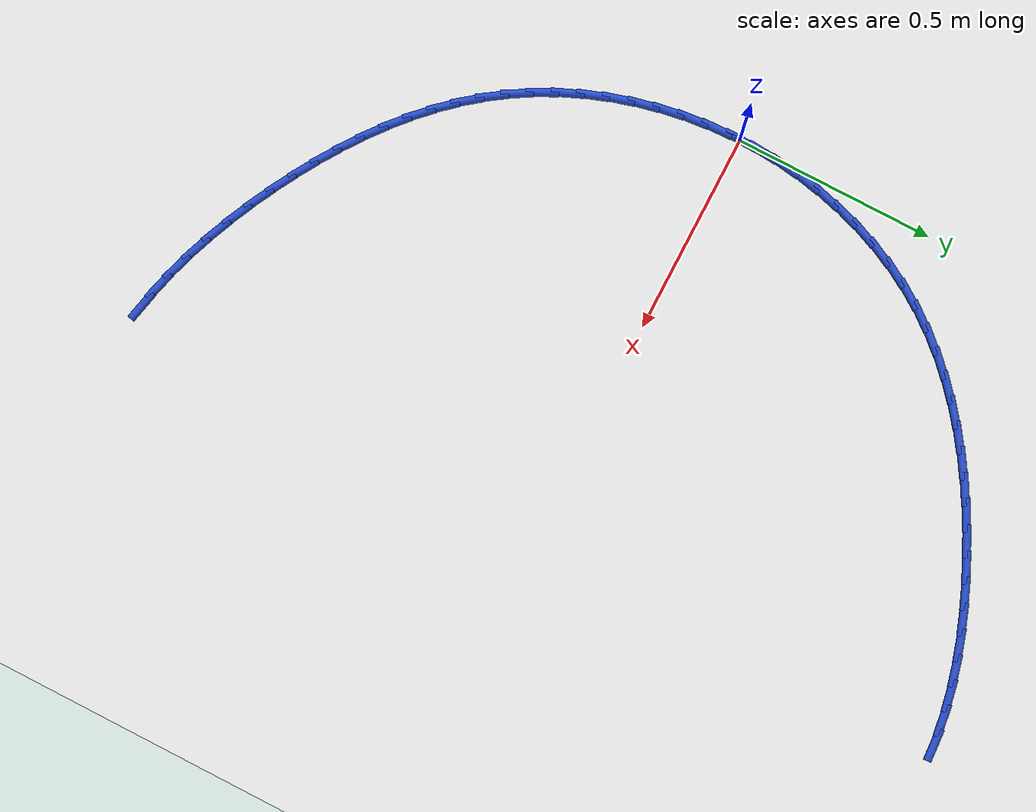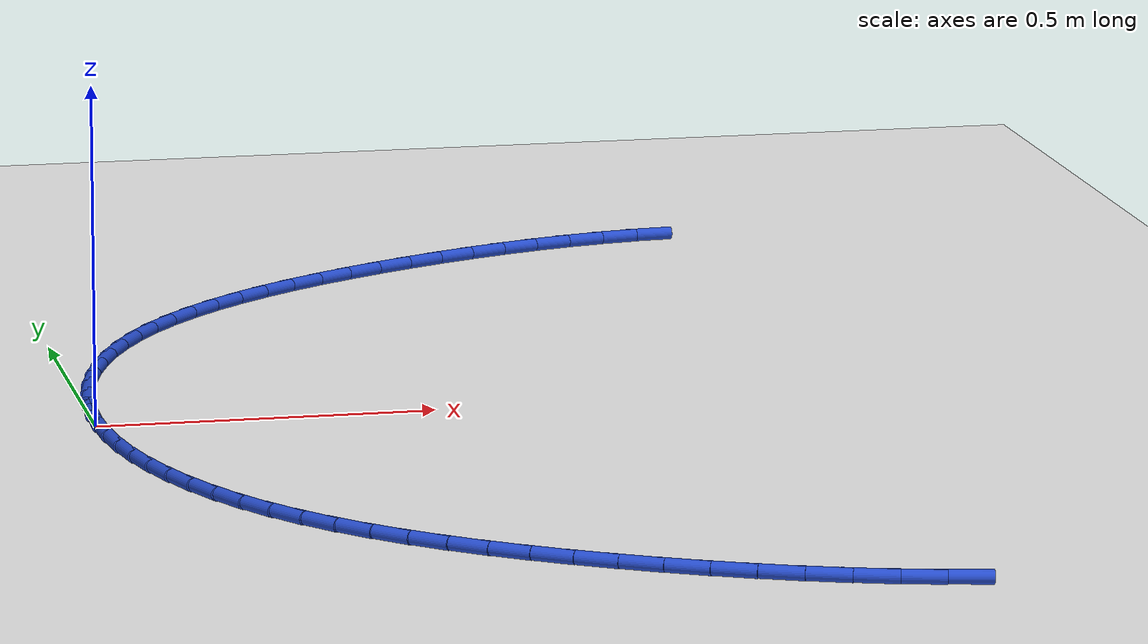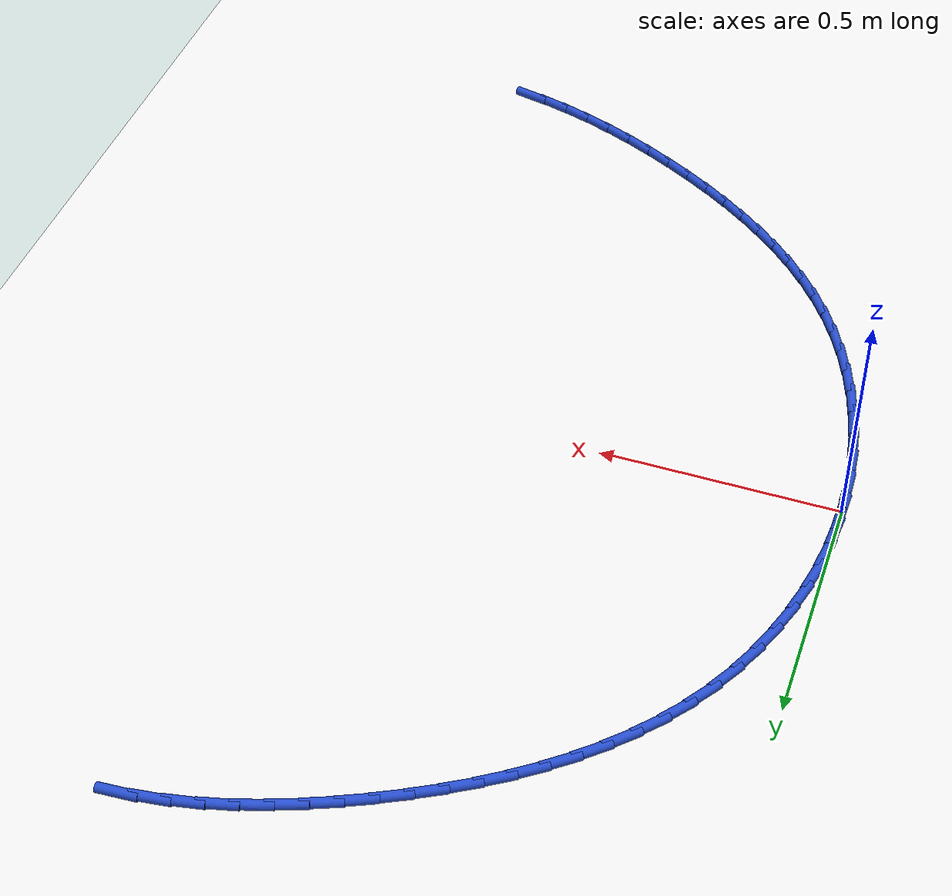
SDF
<sdf version="1.6">
 <world name="default">
  <model name="ground_plane">
   <static>1</static>
   <link name="link">
    <collision name="collision">
     <geometry><plane><normal>0 0 1</normal><size>100 100</size></plane></geometry>
     <surface><friction><ode><mu>100</mu><mu2>50</mu2></ode></friction></surface>
    </collision>
    <visual name="visual">
     <cast_shadows>0</cast_shadows>
     <geometry><plane><normal>0 0 1</normal><size>100 100</size></plane></geometry>
     <material>
      <script><uri>file://media/materials/scripts/gazebo.material</uri><name>Gazebo/WhiteGlow</name></script>
     </material>
    </visual>
   </link>
  </model>
  <model name="line">
   <link name="link_0">
    <pose>-1.0408340855860843e-17 -2.0816681711721685e-16 0.01 0 1.57 1.5445367931981977</pose>
    <collision name="collision">
     <geometry><cylinder><radius>0.01</radius><length>0.08</length></cylinder></geometry>
    </collision>
    <visual name="visual">
     <material>
      <script><name>Gazebo/Blue</name><uri>file://media/materials/scripts/gazebo.material</uri></script>
     </material>
     <geometry><cylinder><radius>0.01</radius><length>0.08</length></cylinder></geometry>
    </visual>
   </link>
   <link name="link_1">
    <pose>0.0016090241988518136 0.06125982149242314 0.01 0 1.57 1.4847815136559068</pose>
    <collision name="collision">
     <geometry><cylinder><radius>0.01</radius><length>0.08</length></cylinder></geometry>
    </collision>
    <visual name="visual">
     <material>
      <script><name>Gazebo/Blue</name><uri>file://media/materials/scripts/gazebo.material</uri></script>
     </material>
     <geometry><cylinder><radius>0.01</radius><length>0.08</length></cylinder></geometry>
    </visual>
   </link>
   <link name="link_2">
    <pose>0.006869378761184274 0.12226530382957211 0.01 0 1.57 1.424776633245018</pose>
    <collision name="collision">
     <geometry><cylinder><radius>0.01</radius><length>0.08</length></cylinder></geometry>
    </collision>
    <visual name="visual">
     <material>
      <script><name>Gazebo/Blue</name><uri>file://media/materials/scripts/gazebo.material</uri></script>
     </material>
     <geometry><cylinder><radius>0.01</radius><length>0.08</length></cylinder></geometry>
    </visual>
   </link>
   <link name="link_3">
    <pose>0.0157631495869021 0.18273982149628865 0.01 0 1.57 1.3641377413178506</pose>
    <collision name="collision">
     <geometry><cylinder><radius>0.01</radius><length>0.08</length></cylinder></geometry>
    </collision>
    <visual name="visual">
     <material>
      <script><name>Gazebo/Blue</name><uri>file://media/materials/scripts/gazebo.material</uri></script>
     </material>
     <geometry><cylinder><radius>0.01</radius><length>0.08</length></cylinder></geometry>
    </visual>
   </link>
   <link name="link_4">
    <pose>0.028272422575910075 0.24240674897741482 0.01 0 1.57 1.3024838307703317</pose>
    <collision name="collision">
     <geometry><cylinder><radius>0.01</radius><length>0.08</length></cylinder></geometry>
    </collision>
    <visual name="visual">
     <material>
      <script><name>Gazebo/Blue</name><uri>file://media/materials/scripts/gazebo.material</uri></script>
     </material>
     <geometry><cylinder><radius>0.01</radius><length>0.08</length></cylinder></geometry>
    </visual>
   </link>
   <link name="link_5">
    <pose>0.04437928362811293 0.3009894607577926 0.01 0 1.57 1.2394421279415735</pose>
    <collision name="collision">
     <geometry><cylinder><radius>0.01</radius><length>0.08</length></cylinder></geometry>
    </collision>
    <visual name="visual">
     <material>
      <script><name>Gazebo/Blue</name><uri>file://media/materials/scripts/gazebo.material</uri></script>
     </material>
     <geometry><cylinder><radius>0.01</radius><length>0.08</length></cylinder></geometry>
    </visual>
   </link>
   <link name="link_6">
    <pose>0.0640658186434154 0.3582113313222638 0.01 0 1.57 1.1746550469970418</pose>
    <collision name="collision">
     <geometry><cylinder><radius>0.01</radius><length>0.08</length></cylinder></geometry>
    </collision>
    <visual name="visual">
     <material>
      <script><name>Gazebo/Blue</name><uri>file://media/materials/scripts/gazebo.material</uri></script>
     </material>
     <geometry><cylinder><radius>0.01</radius><length>0.08</length></cylinder></geometry>
    </visual>
   </link>
   <link name="link_7">
    <pose>0.08731411352172225 0.41379573515567053 0.01 0 1.57 1.1077900994409624</pose>
    <collision name="collision">
     <geometry><cylinder><radius>0.01</radius><length>0.08</length></cylinder></geometry>
    </collision>
    <visual name="visual">
     <material>
      <script><name>Gazebo/Blue</name><uri>file://media/materials/scripts/gazebo.material</uri></script>
     </material>
     <geometry><cylinder><radius>0.01</radius><length>0.08</length></cylinder></geometry>
    </visual>
   </link>
   <link name="link_8">
    <pose>0.11410625416293826 0.46746604674285486 0.01 0 1.57 1.0385534839172859</pose>
    <collision name="collision">
     <geometry><cylinder><radius>0.01</radius><length>0.08</length></cylinder></geometry>
    </collision>
    <visual name="visual">
     <material>
      <script><name>Gazebo/Blue</name><uri>file://media/materials/scripts/gazebo.material</uri></script>
     </material>
     <geometry><cylinder><radius>0.01</radius><length>0.08</length></cylinder></geometry>
    </visual>
   </link>
   <link name="link_9">
    <pose>0.14442432646696818 0.5189456405686586 0.01 0 1.57 0.9669129062504712</pose>
    <collision name="collision">
     <geometry><cylinder><radius>0.01</radius><length>0.08</length></cylinder></geometry>
    </collision>
    <visual name="visual">
     <material>
      <script><name>Gazebo/Blue</name><uri>file://media/materials/scripts/gazebo.material</uri></script>
     </material>
     <geometry><cylinder><radius>0.01</radius><length>0.08</length></cylinder></geometry>
    </visual>
   </link>
   <link name="link_10">
    <pose>0.17824274986509572 0.5679682885847851 0.01 0 1.57 0.8963630843494043</pose>
    <collision name="collision">
     <geometry><cylinder><radius>0.01</radius><length>0.08</length></cylinder></geometry>
    </collision>
    <visual name="visual">
     <material>
      <script><name>Gazebo/Blue</name><uri>file://media/materials/scripts/gazebo.material</uri></script>
     </material>
     <geometry><cylinder><radius>0.01</radius><length>0.08</length></cylinder></geometry>
    </visual>
   </link>
   <link name="link_11">
    <pose>0.21540305828365772 0.6144479855681233 0.01 0 1.57 0.830148145424761</pose>
    <collision name="collision">
     <geometry><cylinder><radius>0.01</radius><length>0.08</length></cylinder></geometry>
    </collision>
    <visual name="visual">
     <material>
      <script><name>Gazebo/Blue</name><uri>file://media/materials/scripts/gazebo.material</uri></script>
     </material>
     <geometry><cylinder><radius>0.01</radius><length>0.08</length></cylinder></geometry>
    </visual>
   </link>
   <link name="link_12">
    <pose>0.25563431824626115 0.6584512575522193 0.01 0 1.57 0.7685072253940374</pose>
    <collision name="collision">
     <geometry><cylinder><radius>0.01</radius><length>0.08</length></cylinder></geometry>
    </collision>
    <visual name="visual">
     <material>
      <script><name>Gazebo/Blue</name><uri>file://media/materials/scripts/gazebo.material</uri></script>
     </material>
     <geometry><cylinder><radius>0.01</radius><length>0.08</length></cylinder></geometry>
    </visual>
   </link>
   <link name="link_13">
    <pose>0.2986620490877461 0.7000494413615425 0.01 0 1.57 0.711426776830469</pose>
    <collision name="collision">
     <geometry><cylinder><radius>0.01</radius><length>0.08</length></cylinder></geometry>
    </collision>
    <visual name="visual">
     <material>
      <script><name>Gazebo/Blue</name><uri>file://media/materials/scripts/gazebo.material</uri></script>
     </material>
     <geometry><cylinder><radius>0.01</radius><length>0.08</length></cylinder></geometry>
    </visual>
   </link>
   <link name="link_14">
    <pose>0.3442117701429526 0.7393138738205622 0.01 0 1.57 0.65877608435679</pose>
    <collision name="collision">
     <geometry><cylinder><radius>0.01</radius><length>0.08</length></cylinder></geometry>
    </collision>
    <visual name="visual">
     <material>
      <script><name>Gazebo/Blue</name><uri>file://media/materials/scripts/gazebo.material</uri></script>
     </material>
     <geometry><cylinder><radius>0.01</radius><length>0.08</length></cylinder></geometry>
    </visual>
   </link>
   <link name="link_15">
    <pose>0.3920090007467211 0.7763158917537484 0.01 0 1.57 0.6103450337031786</pose>
    <collision name="collision">
     <geometry><cylinder><radius>0.01</radius><length>0.08</length></cylinder></geometry>
    </collision>
    <visual name="visual">
     <material>
      <script><name>Gazebo/Blue</name><uri>file://media/materials/scripts/gazebo.material</uri></script>
     </material>
     <geometry><cylinder><radius>0.01</radius><length>0.08</length></cylinder></geometry>
    </visual>
   </link>
   <link name="link_16">
    <pose>0.44177926023389147 0.8111268319855706 0.01 0 1.57 0.5658758025588687</pose>
    <collision name="collision">
     <geometry><cylinder><radius>0.01</radius><length>0.08</length></cylinder></geometry>
    </collision>
    <visual name="visual">
     <material>
      <script><name>Gazebo/Blue</name><uri>file://media/materials/scripts/gazebo.material</uri></script>
     </material>
     <geometry><cylinder><radius>0.01</radius><length>0.08</length></cylinder></geometry>
    </visual>
   </link>
   <link name="link_17">
    <pose>0.49324806793930387 0.8438180313404977 0.01 0 1.57 0.5250874799756405</pose>
    <collision name="collision">
     <geometry><cylinder><radius>0.01</radius><length>0.08</length></cylinder></geometry>
    </collision>
    <visual name="visual">
     <material>
      <script><name>Gazebo/Blue</name><uri>file://media/materials/scripts/gazebo.material</uri></script>
     </material>
     <geometry><cylinder><radius>0.01</radius><length>0.08</length></cylinder></geometry>
    </visual>
   </link>
   <link name="link_18">
    <pose>0.5461409431977984 0.8744608266429996 0.01 0 1.57 0.48769400286201586</pose>
    <collision name="collision">
     <geometry><cylinder><radius>0.01</radius><length>0.08</length></cylinder></geometry>
    </collision>
    <visual name="visual">
     <material>
      <script><name>Gazebo/Blue</name><uri>file://media/materials/scripts/gazebo.material</uri></script>
     </material>
     <geometry><cylinder><radius>0.01</radius><length>0.08</length></cylinder></geometry>
    </visual>
   </link>
   <link name="link_19">
    <pose>0.6001834053442153 0.9031265547175462 0.01 0 1.57 0.45341487942533043</pose>
    <collision name="collision">
     <geometry><cylinder><radius>0.01</radius><length>0.08</length></cylinder></geometry>
    </collision>
    <visual name="visual">
     <material>
      <script><name>Gazebo/Blue</name><uri>file://media/materials/scripts/gazebo.material</uri></script>
     </material>
     <geometry><cylinder><radius>0.01</radius><length>0.08</length></cylinder></geometry>
    </visual>
   </link>
   <link name="link_20">
    <pose>0.6551010359410494 0.9298864748464187 0.01 0 1.57 0.42041061689052833</pose>
    <collision name="collision">
     <geometry><cylinder><radius>0.01</radius><length>0.08</length></cylinder></geometry>
    </collision>
    <visual name="visual">
     <material>
      <script><name>Gazebo/Blue</name><uri>file://media/materials/scripts/gazebo.material</uri></script>
     </material>
     <geometry><cylinder><radius>0.01</radius><length>0.08</length></cylinder></geometry>
    </visual>
   </link>
   <link name="link_21">
    <pose>0.7106814533041962 0.9547345420073294 0.01 0 1.57 0.38393802546378325</pose>
    <collision name="collision">
     <geometry><cylinder><radius>0.01</radius><length>0.08</length></cylinder></geometry>
    </collision>
    <visual name="visual">
     <material>
      <script><name>Gazebo/Blue</name><uri>file://media/materials/scripts/gazebo.material</uri></script>
     </material>
     <geometry><cylinder><radius>0.01</radius><length>0.08</length></cylinder></geometry>
    </visual>
   </link>
   <link name="link_22">
    <pose>0.7668907447770624 0.9774423200420483 0.01 0 1.57 0.34303454594396604</pose>
    <collision name="collision">
     <geometry><cylinder><radius>0.01</radius><length>0.08</length></cylinder></geometry>
    </collision>
    <visual name="visual">
     <material>
      <script><name>Gazebo/Blue</name><uri>file://media/materials/scripts/gazebo.material</uri></script>
     </material>
     <geometry><cylinder><radius>0.01</radius><length>0.08</length></cylinder></geometry>
    </visual>
   </link>
   <link name="link_23">
    <pose>0.8237268953910865 0.9977416249258709 0.01 0 1.57 0.2975820216933092</pose>
    <collision name="collision">
     <geometry><cylinder><radius>0.01</radius><length>0.08</length></cylinder></geometry>
    </collision>
    <visual name="visual">
     <material>
      <script><name>Gazebo/Blue</name><uri>file://media/materials/scripts/gazebo.material</uri></script>
     </material>
     <geometry><cylinder><radius>0.01</radius><length>0.08</length></cylinder></geometry>
    </visual>
   </link>
   <link name="link_24">
    <pose>0.8811878901777067 1.015364272634092 0.01 0 1.57 0.24751861216411206</pose>
    <collision name="collision">
     <geometry><cylinder><radius>0.01</radius><length>0.08</length></cylinder></geometry>
    </collision>
    <visual name="visual">
     <material>
      <script><name>Gazebo/Blue</name><uri>file://media/materials/scripts/gazebo.material</uri></script>
     </material>
     <geometry><cylinder><radius>0.01</radius><length>0.08</length></cylinder></geometry>
    </visual>
   </link>
   <link name="link_25">
    <pose>0.9392717141683616 1.0300420791420064 0.01 0 1.57 0.19286842270415547</pose>
    <collision name="collision">
     <geometry><cylinder><radius>0.01</radius><length>0.08</length></cylinder></geometry>
    </collision>
    <visual name="visual">
     <material>
      <script><name>Gazebo/Blue</name><uri>file://media/materials/scripts/gazebo.material</uri></script>
     </material>
     <geometry><cylinder><radius>0.01</radius><length>0.08</length></cylinder></geometry>
    </visual>
   </link>
   <link name="link_26">
    <pose>0.9979763523944892 1.0415068604249096 0.01 0 1.57 0.1337733054320361</pose>
    <collision name="collision">
     <geometry><cylinder><radius>0.01</radius><length>0.08</length></cylinder></geometry>
    </collision>
    <visual name="visual">
     <material>
      <script><name>Gazebo/Blue</name><uri>file://media/materials/scripts/gazebo.material</uri></script>
     </material>
     <geometry><cylinder><radius>0.01</radius><length>0.08</length></cylinder></geometry>
    </visual>
   </link>
   <link name="link_27">
    <pose>1.0572997898875287 1.0494904324580971 0.01 0 1.57 0.07052287720650836</pose>
    <collision name="collision">
     <geometry><cylinder><radius>0.01</radius><length>0.08</length></cylinder></geometry>
    </collision>
    <visual name="visual">
     <material>
      <script><name>Gazebo/Blue</name><uri>file://media/materials/scripts/gazebo.material</uri></script>
     </material>
     <geometry><cylinder><radius>0.01</radius><length>0.08</length></cylinder></geometry>
    </visual>
   </link>
   <link name="link_84">
    <pose>0.9991134741351964 -1.067758711245783 0.01 0 1.57 -0.2189612885040175</pose>
    <collision name="collision">
     <geometry><cylinder><radius>0.01</radius><length>0.08</length></cylinder></geometry>
    </collision>
    <visual name="visual">
     <material>
      <script><name>Gazebo/Blue</name><uri>file://media/materials/scripts/gazebo.material</uri></script>
     </material>
     <geometry><cylinder><radius>0.01</radius><length>0.08</length></cylinder></geometry>
    </visual>
   </link>
   <link name="link_85">
    <pose>0.9394061504980881 -1.0544720989425023 0.01 0 1.57 -0.2735581666819616</pose>
    <collision name="collision">
     <geometry><cylinder><radius>0.01</radius><length>0.08</length></cylinder></geometry>
    </collision>
    <visual name="visual">
     <material>
      <script><name>Gazebo/Blue</name><uri>file://media/materials/scripts/gazebo.material</uri></script>
     </material>
     <geometry><cylinder><radius>0.01</radius><length>0.08</length></cylinder></geometry>
    </visual>
   </link>
   <link name="link_86">
    <pose>0.8798356463323103 -1.0377570543427617 0.01 0 1.57 -0.3232321366733121</pose>
    <collision name="collision">
     <geometry><cylinder><radius>0.01</radius><length>0.08</length></cylinder></geometry>
    </collision>
    <visual name="visual">
     <material>
      <script><name>Gazebo/Blue</name><uri>file://media/materials/scripts/gazebo.material</uri></script>
     </material>
     <geometry><cylinder><radius>0.01</radius><length>0.08</length></cylinder></geometry>
    </visual>
   </link>
   <link name="link_87">
    <pose>0.8206179513332906 -1.017920290118248 0.01 0 1.57 -0.36857677035676606</pose>
    <collision name="collision">
     <geometry><cylinder><radius>0.01</radius><length>0.08</length></cylinder></geometry>
    </collision>
    <visual name="visual">
     <material>
      <script><name>Gazebo/Blue</name><uri>file://media/materials/scripts/gazebo.material</uri></script>
     </material>
     <geometry><cylinder><radius>0.01</radius><length>0.08</length></cylinder></geometry>
    </visual>
   </link>
   <link name="link_88">
    <pose>0.7619690551964605 -0.9952685189406499 0.01 0 1.57 -0.410152888977622</pose>
    <collision name="collision">
     <geometry><cylinder><radius>0.01</radius><length>0.08</length></cylinder></geometry>
    </collision>
    <visual name="visual">
     <material>
      <script><name>Gazebo/Blue</name><uri>file://media/materials/scripts/gazebo.material</uri></script>
     </material>
     <geometry><cylinder><radius>0.01</radius><length>0.08</length></cylinder></geometry>
    </visual>
   </link>
   <link name="link_89">
    <pose>0.704104947617248 -0.9701084534816545 0.01 0 1.57 -0.44848071702313574</pose>
    <collision name="collision">
     <geometry><cylinder><radius>0.01</radius><length>0.08</length></cylinder></geometry>
    </collision>
    <visual name="visual">
     <material>
      <script><name>Gazebo/Blue</name><uri>file://media/materials/scripts/gazebo.material</uri></script>
     </material>
     <geometry><cylinder><radius>0.01</radius><length>0.08</length></cylinder></geometry>
    </visual>
   </link>
   <link name="link_90">
    <pose>0.6472416182910838 -0.94274680641295 0.01 0 1.57 -0.484039502776817</pose>
    <collision name="collision">
     <geometry><cylinder><radius>0.01</radius><length>0.08</length></cylinder></geometry>
    </collision>
    <visual name="visual">
     <material>
      <script><name>Gazebo/Blue</name><uri>file://media/materials/scripts/gazebo.material</uri></script>
     </material>
     <geometry><cylinder><radius>0.01</radius><length>0.08</length></cylinder></geometry>
    </visual>
   </link>
   <link name="link_91">
    <pose>0.5915950569133969 -0.9134902904062241 0.01 0 1.57 -0.5178733590392871</pose>
    <collision name="collision">
     <geometry><cylinder><radius>0.01</radius><length>0.08</length></cylinder></geometry>
    </collision>
    <visual name="visual">
     <material>
      <script><name>Gazebo/Blue</name><uri>file://media/materials/scripts/gazebo.material</uri></script>
     </material>
     <geometry><cylinder><radius>0.01</radius><length>0.08</length></cylinder></geometry>
    </visual>
   </link>
   <link name="link_92">
    <pose>0.5373779553661993 -0.8826005604210687 0.01 0 1.57 -0.5538706537516347</pose>
    <collision name="collision">
     <geometry><cylinder><radius>0.01</radius><length>0.08</length></cylinder></geometry>
    </collision>
    <visual name="visual">
     <material>
      <script><name>Gazebo/Blue</name><uri>file://media/materials/scripts/gazebo.material</uri></script>
     </material>
     <geometry><cylinder><radius>0.01</radius><length>0.08</length></cylinder></geometry>
    </visual>
   </link>
   <link name="link_93">
    <pose>0.4847835835932989 -0.8500739113166575 0.01 0 1.57 -0.5935319165760438</pose>
    <collision name="collision">
     <geometry><cylinder><radius>0.01</radius><length>0.08</length></cylinder></geometry>
    </collision>
    <visual name="visual">
     <material>
      <script><name>Gazebo/Blue</name><uri>file://media/materials/scripts/gazebo.material</uri></script>
     </material>
     <geometry><cylinder><radius>0.01</radius><length>0.08</length></cylinder></geometry>
    </visual>
   </link>
   <link name="link_94">
    <pose>0.4339981254804662 -0.8158098218129175 0.01 0 1.57 -0.6370348121849614</pose>
    <collision name="collision">
     <geometry><cylinder><radius>0.01</radius><length>0.08</length></cylinder></geometry>
    </collision>
    <visual name="visual">
     <material>
      <script><name>Gazebo/Blue</name><uri>file://media/materials/scripts/gazebo.material</uri></script>
     </material>
     <geometry><cylinder><radius>0.01</radius><length>0.08</length></cylinder></geometry>
    </visual>
   </link>
   <link name="link_95">
    <pose>0.38520775455331985 -0.7797076290800533 0.01 0 1.57 -0.6845232399224919</pose>
    <collision name="collision">
     <geometry><cylinder><radius>0.01</radius><length>0.08</length></cylinder></geometry>
    </collision>
    <visual name="visual">
     <material>
      <script><name>Gazebo/Blue</name><uri>file://media/materials/scripts/gazebo.material</uri></script>
     </material>
     <geometry><cylinder><radius>0.01</radius><length>0.08</length></cylinder></geometry>
    </visual>
   </link>
   <link name="link_96">
    <pose>0.3385986443374814 -0.74166667028827 0.01 0 1.57 -0.7360882332359193</pose>
    <collision name="collision">
     <geometry><cylinder><radius>0.01</radius><length>0.08</length></cylinder></geometry>
    </collision>
    <visual name="visual">
     <material>
      <script><name>Gazebo/Blue</name><uri>file://media/materials/scripts/gazebo.material</uri></script>
     </material>
     <geometry><cylinder><radius>0.01</radius><length>0.08</length></cylinder></geometry>
    </visual>
   </link>
   <link name="link_97">
    <pose>0.2943569683585704 -0.7015862826077726 0.01 0 1.57 -0.7917432146807121</pose>
    <collision name="collision">
     <geometry><cylinder><radius>0.01</radius><length>0.08</length></cylinder></geometry>
    </collision>
    <visual name="visual">
     <material>
      <script><name>Gazebo/Blue</name><uri>file://media/materials/scripts/gazebo.material</uri></script>
     </material>
     <geometry><cylinder><radius>0.01</radius><length>0.08</length></cylinder></geometry>
    </visual>
   </link>
   <link name="link_98">
    <pose>0.25266890014220683 -0.6593658032087656 0.01 0 1.57 -0.8513971056456273</pose>
    <collision name="collision">
     <geometry><cylinder><radius>0.01</radius><length>0.08</length></cylinder></geometry>
    </collision>
    <visual name="visual">
     <material>
      <script><name>Gazebo/Blue</name><uri>file://media/materials/scripts/gazebo.material</uri></script>
     </material>
     <geometry><cylinder><radius>0.01</radius><length>0.08</length></cylinder></geometry>
    </visual>
   </link>
   <link name="link_99">
    <pose>0.21372061321401203 -0.6149045692614554 0.01 0 1.57 -0.914828360589927</pose>
    <collision name="collision">
     <geometry><cylinder><radius>0.01</radius><length>0.08</length></cylinder></geometry>
    </collision>
    <visual name="visual">
     <material>
      <script><name>Gazebo/Blue</name><uri>file://media/materials/scripts/gazebo.material</uri></script>
     </material>
     <geometry><cylinder><radius>0.01</radius><length>0.08</length></cylinder></geometry>
    </visual>
   </link>
   <link name="link_100">
    <pose>0.1776982810996051 -0.5681019179360451 0.01 0 1.57 -0.9815905799211341</pose>
    <collision name="collision">
     <geometry><cylinder><radius>0.01</radius><length>0.08</length></cylinder></geometry>
    </collision>
    <visual name="visual">
     <material>
      <script><name>Gazebo/Blue</name><uri>file://media/materials/scripts/gazebo.material</uri></script>
     </material>
     <geometry><cylinder><radius>0.01</radius><length>0.08</length></cylinder></geometry>
    </visual>
   </link>
   <link name="link_101">
    <pose>0.14478616582479736 -0.5188622067225579 0.01 0 1.57 -1.0489528721065056</pose>
    <collision name="collision">
     <geometry><cylinder><radius>0.01</radius><length>0.08</length></cylinder></geometry>
    </collision>
    <visual name="visual">
     <material>
      <script><name>Gazebo/Blue</name><uri>file://media/materials/scripts/gazebo.material</uri></script>
     </material>
     <geometry><cylinder><radius>0.01</radius><length>0.08</length></cylinder></geometry>
    </visual>
   </link>
   <link name="link_102">
    <pose>0.11510792327541729 -0.46724896770466484 0.01 0 1.57 -1.1142492845056209</pose>
    <collision name="collision">
     <geometry><cylinder><radius>0.01</radius><length>0.08</length></cylinder></geometry>
    </collision>
    <visual name="visual">
     <material>
      <script><name>Gazebo/Blue</name><uri>file://media/materials/scripts/gazebo.material</uri></script>
     </material>
     <geometry><cylinder><radius>0.01</radius><length>0.08</length></cylinder></geometry>
    </visual>
   </link>
   <link name="link_103">
    <pose>0.08871560034376598 -0.4135138052050962 0.01 0 1.57 -1.177630025051883</pose>
    <collision name="collision">
     <geometry><cylinder><radius>0.01</radius><length>0.08</length></cylinder></geometry>
    </collision>
    <visual name="visual">
     <material>
      <script><name>Gazebo/Blue</name><uri>file://media/materials/scripts/gazebo.material</uri></script>
     </material>
     <geometry><cylinder><radius>0.01</radius><length>0.08</length></cylinder></geometry>
    </visual>
   </link>
   <link name="link_104">
    <pose>0.06565711263557372 -0.3579191738640746 0.01 0 1.57 -1.2394327403837508</pose>
    <collision name="collision">
     <geometry><cylinder><radius>0.01</radius><length>0.08</length></cylinder></geometry>
    </collision>
    <visual name="visual">
     <material>
      <script><name>Gazebo/Blue</name><uri>file://media/materials/scripts/gazebo.material</uri></script>
     </material>
     <geometry><cylinder><radius>0.01</radius><length>0.08</length></cylinder></geometry>
    </visual>
   </link>
   <link name="link_105">
    <pose>0.04598037575657204 -0.30072752832182575 0.01 0 1.57 -1.300011419155403</pose>
    <collision name="collision">
     <geometry><cylinder><radius>0.01</radius><length>0.08</length></cylinder></geometry>
    </collision>
    <visual name="visual">
     <material>
      <script><name>Gazebo/Blue</name><uri>file://media/materials/scripts/gazebo.material</uri></script>
     </material>
     <geometry><cylinder><radius>0.01</radius><length>0.08</length></cylinder></geometry>
    </visual>
   </link>
   <link name="link_106">
    <pose>0.02973330531249136 -0.24220132321857213 0.01 0 1.57 -1.3597283090399535</pose>
    <collision name="collision">
     <geometry><cylinder><radius>0.01</radius><length>0.08</length></cylinder></geometry>
    </collision>
    <visual name="visual">
     <material>
      <script><name>Gazebo/Blue</name><uri>file://media/materials/scripts/gazebo.material</uri></script>
     </material>
     <geometry><cylinder><radius>0.01</radius><length>0.08</length></cylinder></geometry>
    </visual>
   </link>
   <link name="link_107">
    <pose>0.016963816909063026 -0.18260301319453923 0.01 0 1.57 -1.41894825178117</pose>
    <collision name="collision">
     <geometry><cylinder><radius>0.01</radius><length>0.08</length></cylinder></geometry>
    </collision>
    <visual name="visual">
     <material>
      <script><name>Gazebo/Blue</name><uri>file://media/materials/scripts/gazebo.material</uri></script>
     </material>
     <geometry><cylinder><radius>0.01</radius><length>0.08</length></cylinder></geometry>
    </visual>
   </link>
   <link name="link_108">
    <pose>0.007719826152017644 -0.12219505288994979 0.01 0 1.57 -1.4780346320778526</pose>
    <collision name="collision">
     <geometry><cylinder><radius>0.01</radius><length>0.08</length></cylinder></geometry>
    </collision>
    <visual name="visual">
     <material>
      <script><name>Gazebo/Blue</name><uri>file://media/materials/scripts/gazebo.material</uri></script>
     </material>
     <geometry><cylinder><radius>0.01</radius><length>0.08</length></cylinder></geometry>
    </visual>
   </link>
   <link name="link_109">
    <pose>0.0020492486470863637 -0.06123989694502918 0.01 0 1.57 -1.5373461679629374</pose>
    <collision name="collision">
     <geometry><cylinder><radius>0.01</radius><length>0.08</length></cylinder></geometry>
    </collision>
    <visual name="visual">
     <material>
      <script><name>Gazebo/Blue</name><uri>file://media/materials/scripts/gazebo.material</uri></script>
     </material>
     <geometry><cylinder><radius>0.01</radius><length>0.08</length></cylinder></geometry>
    </visual>
   </link>
   <link name="link_110">
    <pose>-1.3877787807814457e-17 -1.6653345369377348e-16 0.01 0 1.57 1.5443588365778853</pose>
    <collision name="collision">
     <geometry><cylinder><radius>0.01</radius><length>0.08</length></cylinder></geometry>
    </collision>
    <visual name="visual">
     <material>
      <script><name>Gazebo/Blue</name><uri>file://media/materials/scripts/gazebo.material</uri></script>
     </material>
     <geometry><cylinder><radius>0.01</radius><length>0.08</length></cylinder></geometry>
    </visual>
   </link>
   <link name="link_111">
    <pose>0.0016199958164895 0.061262183304911774 0.01 0 1.57 1.5443588365778855</pose>
    <collision name="collision">
     <geometry><cylinder><radius>0.01</radius><length>0.08</length></cylinder></geometry>
    </collision>
    <visual name="visual">
     <material>
      <script><name>Gazebo/Blue</name><uri>file://media/materials/scripts/gazebo.material</uri></script>
     </material>
     <geometry><cylinder><radius>0.01</radius><length>0.08</length></cylinder></geometry>
    </visual>
   </link>
  </model>
 </world>
</sdf>
